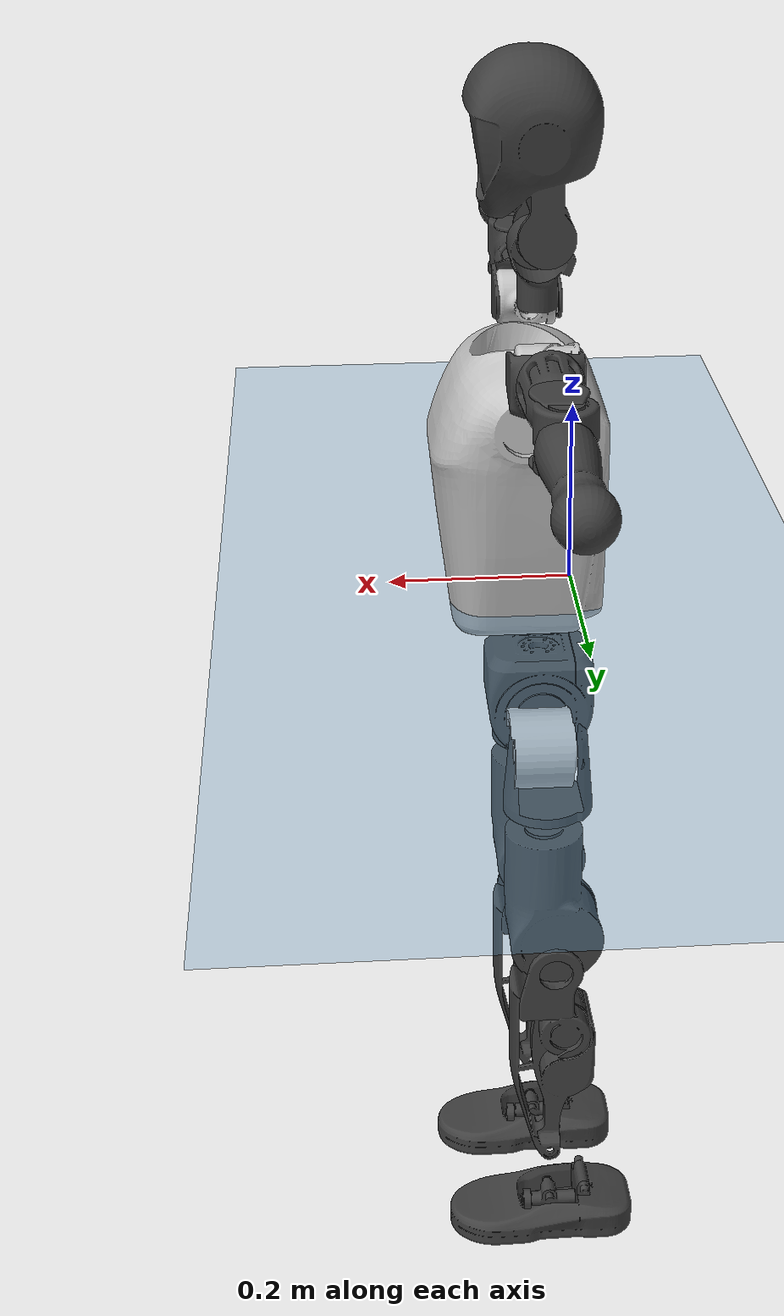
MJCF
<mujoco model="T1">
  <compiler angle="radian" assetdir="assets" balanceinertia="true" inertiafromgeom="false"/>

  <option timestep="0.005" density="1.2" viscosity="2e-05"/>

  <size nkey="1"/>

  <visual>
    <quality shadowsize="8192"/>
    <map shadowclip="0.5"/>
  </visual>

  <default>
    <default class="/">
      <joint armature="0.01" damping="0.01" frictionloss="0.1"/>
      <geom contype="0" conaffinity="0" group="1" solref="-1000 -80"/>
      <site size="0.01 0.005 0.005" group="5"/>
      <general forcelimited="true" biastype="affine" gainprm="25" biasprm="0 -25 -0.6"/>
      <default class="t1">
        <geom rgba="0.25 0.25 0.25 1"/>
        <default class="visual">
          <geom type="mesh" group="2"/>
        </default>
        <default class="collision">
          <geom group="3"/>
        </default>
        <default class="foot">
          <geom size="0.1115 0.05 0.015" type="box" condim="6" group="4" priority="1" solimp="0.015 1 0.015"/>
        </default>
        <default class="reward_collision_sphere">
          <geom group="5" rgba="1 0 0 1"/>
        </default>
      </default>
    </default>
  </default>

  <asset>
    <texture type="skybox" colorspace="auto" name="//unnamed_texture_0" builtin="gradient" rgb1="0.95 0.95 0.95" rgb2="0.95 0.95 0.95" width="100" height="600"/>
    <texture type="2d" colorspace="auto" name="texplane" builtin="checker" rgb1="0.345 0.575 0.748" rgb2="0.345 0.575 0.748" markrgb="1 1 1" width="512" height="512"/>
    <material name="MatPlane" class="/" texture="texplane" texuniform="true" texrepeat="2 2" specular="0.9"/>
    <mesh name="Trunk" class="/" file="Trunk.stl"/>
    <mesh name="H1" class="/" file="H1.stl"/>
    <mesh name="H2" class="/" file="H2.stl"/>
    <mesh name="AL1" class="/" file="AL1.stl"/>
    <mesh name="AL2" class="/" file="AL2.stl"/>
    <mesh name="AL3" class="/" file="AL3.stl"/>
    <mesh name="left_hand_link" class="/" file="left_hand_link.stl"/>
    <mesh name="AR1" class="/" file="AR1.stl"/>
    <mesh name="AR2" class="/" file="AR2.stl"/>
    <mesh name="AR3" class="/" file="AR3.stl"/>
    <mesh name="right_hand_link" class="/" file="right_hand_link.stl"/>
    <mesh name="Waist" class="/" file="Waist.stl"/>
    <mesh name="Hip_Pitch_Left" class="/" file="Hip_Pitch_Left.stl"/>
    <mesh name="Hip_Roll_Left" class="/" file="Hip_Roll_Left.stl"/>
    <mesh name="Hip_Yaw_Left" class="/" file="Hip_Yaw_Left.stl"/>
    <mesh name="Shank_Left" class="/" file="Shank_Left.stl"/>
    <mesh name="Ankle_Cross_Left" class="/" file="Ankle_Cross_Left.stl"/>
    <mesh name="left_foot_link" class="/" file="left_foot_link.stl"/>
    <mesh name="Hip_Pitch_Right" class="/" file="Hip_Pitch_Right.stl"/>
    <mesh name="Hip_Roll_Right" class="/" file="Hip_Roll_Right.stl"/>
    <mesh name="Hip_Yaw_Right" class="/" file="Hip_Yaw_Right.stl"/>
    <mesh name="Shank_Right" class="/" file="Shank_Right.stl"/>
    <mesh name="Ankle_Cross_Right" class="/" file="Ankle_Cross_Right.stl"/>
    <mesh name="right_foot_link" class="/" file="right_foot_link.stl"/>
  </asset>

  <worldbody>
    <geom name="floor" class="/" size="100 100 0.125" type="plane" group="0" material="MatPlane"/>
    <light name="toplight_shadow" class="/" pos="0 0 5" dir="0.0990148 0.0990148 -0.990148" type="directional" ambient="0.04 0.04 0.04" diffuse="0.55 0.55 0.55" specular="0.12 0.12 0.12"/>
    <light name="toplight_fill" class="/" pos="0 0 5" dir="0.0990148 0.0990148 -0.990148" type="directional" castshadow="false" ambient="0.04 0.04 0.04" diffuse="0.3 0.3 0.3" specular="0.08 0.08 0.08"/>
    <body name="trunk" childclass="t1" pos="0.001521 -0.00232406 -0.00159784" quat="1 0.000471609 -0.000370042 0.000149215">
      <inertial pos="0.033242 0.00145169 0.135562" quat="0.999944 0.000146868 -0.0100547 0.00315248" mass="8.10099" diaginertia="0.00641997 0.0235993 0.193888"/>
      <joint name="//unnamed_joint_0" type="free" armature="0" damping="0" frictionloss="0"/>
      <geom name="//unnamed_geom_1" class="visual" rgba="0.76 0.76 0.76 1" mesh="Trunk"/>
      <geom name="//unnamed_geom_2" class="collision" size="0.0666614 0.0888819 0.133323" pos="0.0355094 0 0.153505" type="box"/>
      <geom name="//unnamed_geom_3" class="reward_collision_sphere" size="0.102214" pos="0.0355094 0 0.127921"/>
      <geom name="//unnamed_geom_4" class="reward_collision_sphere" size="0.0133323" pos="0.0355094 0.0676108 0"/>
      <geom name="//unnamed_geom_5" class="reward_collision_sphere" size="0.0133323" pos="0.0355094 -0.0676108 0"/>
      <geom name="//unnamed_geom_6" class="reward_collision_sphere" size="0.0133323" pos="0.0355094 0.0851101 0.230258"/>
      <geom name="//unnamed_geom_7" class="reward_collision_sphere" size="0.0133323" pos="0.0355094 -0.0851101 0.230258"/>
      <site name="imu" pos="0.0271817 -0.0290982 0.0260854" size="0.00888819"/>
      <camera name="track" pos="0 -1.59084 0" quat="0.707107 0.707107 0 0" mode="trackcom"/>
      <camera name="ego_camera" pos="0.0722025 0 0.537269" quat="-0.5 -0.5 0.5 0.5"/>
      <body name="H1" pos="0.0370008 -0.00275566 0.309085" quat="0.999997 0.000385628 0.00249848 -0.000224261">
        <inertial pos="-0.000454861 0.00056884 0.0748843" quat="0.75844 -0.0196182 0.00717463 0.651408" mass="0.272369" diaginertia="1.723e-05 6.90721e-05 0.000492073"/>
        <joint name="AAHead_yaw" pos="0 0 0" axis="-0.000468135 -0.00330241 0.999994" range="-1.51839 1.55819" armature="0.00621117" damping="0.0225961" frictionloss="0.088867"/>
        <geom name="//unnamed_geom_8" class="visual" mesh="H1"/>
        <body name="H2" pos="-0.00711716 0.000758445 0.0790412" quat="1 -4.60772e-07 -2.04684e-05 -1.02216e-05">
          <inertial pos="0.00359728 0.00271442 0.124525" quat="0.987726 0.111616 -0.0675153 -0.085914" mass="0.4287" diaginertia="0.000148355 0.000598313 0.00583326"/>
          <joint name="Head_pitch" pos="0 0 0" axis="-0.0096118 -0.999954 -0.000393214" range="-1.26898 0.366056" armature="0.00959619" damping="0.00442774" frictionloss="0.0787007"/>
          <geom name="//unnamed_geom_9" class="visual" mesh="H2"/>
          <geom name="//unnamed_geom_10" class="collision" size="0.0711055" pos="0.00591823 0 0.140713"/>
          <geom name="//unnamed_geom_11" class="reward_collision_sphere" size="0.0799937" pos="0.0118365 0 0.127921"/>
        </body>
      </body>
      <body name="AL1" pos="0.0394549 0.0832711 0.282159" quat="0.999999 0.000362245 0.00158741 0.000470973">
        <inertial pos="-0.000293883 0.0322316 -0.000122333" quat="0.509772 0.490745 -0.497443 0.501849" mass="0.381917" diaginertia="9.8456e-05 0.000407088 0.000992928"/>
        <joint name="Left_Shoulder_Pitch" pos="0 0 0" axis="-0.0138514 0.999899 -0.00327106" range="-3.28937 1.18018" armature="0.00815933" damping="0.0133448" frictionloss="0.0940634"/>
        <geom name="//unnamed_geom_12" class="visual" rgba="0.76 0.76 0.76 1" mesh="AL1"/>
        <body name="AL2" pos="0.00287157 0.0378772 -0.000297814" quat="1 -2.32617e-05 0.000190549 -0.00035092">
          <inertial pos="0.00485298 0.0281292 -0.00424299" quat="0.48285 0.512203 -0.492913 0.51141" mass="0.104333" diaginertia="2.8709e-05 0.000113853 0.000591498"/>
          <joint name="Left_Shoulder_Roll" pos="0 0 0" axis="-0.999999 0.00118021 -0.000891782" range="-1.67665 1.63732" armature="0.0110509" damping="0.00922922" frictionloss="0.087587"/>
          <geom name="//unnamed_geom_13" class="visual" mesh="AL2"/>
          <body name="AL3" pos="-0.00136484 0.0456827 0.00413992" quat="0.999999 0.00103525 0.000425491 -0.000360482">
            <inertial pos="-0.00153843 0.0680092 -0.000720201" quat="0.706357 0.707855 -0.000320031 0.000555882" mass="0.682091" diaginertia="0.000939743 0.00393019 0.00224813"/>
            <joint name="Left_Elbow_Pitch" pos="0 0 0" axis="0.0252005 -0.999478 0.0202275" stiffness="0.0322813" range="-2.38003 2.20681" armature="0.0119268" damping="0.0454243" frictionloss="0.0980536"/>
            <geom name="//unnamed_geom_14" class="visual" mesh="AL3"/>
            <geom name="//unnamed_geom_15" class="collision" size="0.0266646 0.0666614" pos="0 0.0397711 0" quat="0.707105 0.707108 0 0" type="cylinder"/>
            <geom name="//unnamed_geom_16" class="reward_collision_sphere" size="0.0319975"/>
            <body name="left_hand_link" pos="0.00296067 0.114501 -0.00323382" quat="1 -0.00011786 -0.000132347 8.38298e-05">
              <inertial pos="-0.0015814 0.0896072 0.000401746" quat="0.708576 0.705634 0.000783789 -0.000306086" mass="0.233959" diaginertia="0.000555877 0.00244729 0.000762801"/>
              <joint name="Left_Elbow_Yaw" pos="0 0 0" axis="0.00513037 0.00527467 0.999973" range="-2.44732 0.0358513" armature="0.0063065" damping="0.0175492" frictionloss="0.091888"/>
              <geom name="//unnamed_geom_17" class="visual" mesh="left_hand_link"/>
              <geom name="//unnamed_geom_18" class="collision" size="0.0266646 0.0777717" pos="0 0.103405 0" quat="0.707105 0.707108 0 0" type="cylinder"/>
              <geom name="//unnamed_geom_19" class="reward_collision_sphere" size="0.044441"/>
              <geom name="//unnamed_geom_20" class="reward_collision_sphere" size="0.0311087" pos="0 0.0874964 0"/>
              <geom name="//unnamed_geom_21" class="reward_collision_sphere" size="0.0311087" pos="0 0.171016 0"/>
            </body>
          </body>
        </body>
      </body>
      <body name="AR1" pos="0.0374836 -0.0847077 0.280186" quat="0.999999 -0.000432746 0.000799839 0.00113719">
        <inertial pos="0.00454198 -0.0347176 -0.00212585" quat="0.520187 0.493894 -0.514917 0.469398" mass="0.377337" diaginertia="0.000100622 0.000417957 0.000947691"/>
        <joint name="Right_Shoulder_Pitch" pos="0 0 0" axis="-0.0081349 -0.999935 -0.00802096" range="-1.21715 3.29425" armature="0.00922207" damping="0" frictionloss="0.0976901"/>
        <geom name="//unnamed_geom_22" class="visual" rgba="0.76 0.76 0.76 1" mesh="AR1"/>
        <body name="AR2" pos="-0.00210217 -0.0386701 -0.000735706" quat="1 -0.000275377 -0.000522316 0.000446303">
          <inertial pos="0.00408156 -0.0279142 0.000340716" quat="0.512141 0.488125 -0.512028 0.487107" mass="0.109666" diaginertia="2.97876e-05 0.000103937 0.000600763"/>
          <joint name="Right_Shoulder_Roll" pos="0 0 0" axis="-0.999983 0.00462306 -0.00346521" range="-1.7423 1.45365" armature="0.00989408" damping="0.000140326" frictionloss="0.0993693"/>
          <geom name="//unnamed_geom_23" class="visual" mesh="AR2"/>
          <body name="AR3" pos="-0.0022856 -0.0510894 0.00315943" quat="1 5.39552e-05 0.00017409 0.000390709">
            <inertial pos="0.000718662 -0.0627295 -0.00307824" quat="0.708509 0.705611 0.00810192 -0.00786761" mass="0.730955" diaginertia="0.000930197 0.00416733 0.00203972"/>
            <joint name="Right_Elbow_Pitch" pos="0 0 0" axis="0.000566275 0.999997 0.00239609" stiffness="0.00299073" range="-2.28877 2.31575" armature="0.00870436" damping="0" frictionloss="0.0891339"/>
            <geom name="//unnamed_geom_24" class="visual" mesh="AR3"/>
            <geom name="//unnamed_geom_25" class="collision" size="0.0266646 0.0666614" pos="0 -0.0397711 0" quat="0.707105 0.707108 0 0" type="cylinder"/>
            <geom name="//unnamed_geom_26" class="reward_collision_sphere" size="0.0319975"/>
            <body name="right_hand_link" pos="-0.00269607 -0.116979 -0.00178232" quat="1 -0.000244746 0.000127194 2.49455e-05">
              <inertial pos="-0.000175468 -0.0897759 0.00379113" quat="0.699281 0.714841 -0.00286867 -0.000907121" mass="0.225139" diaginertia="0.000606119 0.00257165 0.000752155"/>
              <joint name="Right_Elbow_Yaw" pos="0 0 0" axis="-0.00891758 0.00915271 0.999918" range="0.0470947 2.44778" armature="0.0101971" damping="0" frictionloss="0.0815811"/>
              <geom name="//unnamed_geom_27" class="visual" mesh="right_hand_link"/>
              <geom name="//unnamed_geom_28" class="collision" size="0.0266646 0.0777717" pos="0 -0.103405 0" quat="0.707105 0.707108 0 0" type="cylinder"/>
              <geom name="//unnamed_geom_29" class="reward_collision_sphere" size="0.044441"/>
              <geom name="//unnamed_geom_30" class="reward_collision_sphere" size="0.0311087" pos="0 -0.0874964 0"/>
              <geom name="//unnamed_geom_31" class="reward_collision_sphere" size="0.0311087" pos="0 -0.171016 0"/>
            </body>
          </body>
        </body>
      </body>
      <body name="Waist" pos="0.0329398 0.00279684 -0.147415" quat="1 -5.19949e-05 3.3223e-05 1.08217e-06">
        <inertial pos="0.00868212 -0.00232897 0.00926404" quat="0.984515 0.00552833 -0.1749 0.010477" mass="1.73969" diaginertia="0.000412464 0.00161439 0.0159746"/>
        <joint name="Waist" pos="0 0 0" axis="-0.0237045 -0.0168152 0.999578" range="-1.53907 1.54295" armature="0.0087793" damping="0" frictionloss="0.0881107"/>
        <geom name="//unnamed_geom_32" class="visual" mesh="Waist"/>
        <body name="Hip_Pitch_Left" pos="0.0052295 0.0829213 -0.00194219" quat="0.999993 -0.00315911 -0.00147908 0.00101585">
          <inertial pos="0.00323615 -0.0113607 -0.0246918" quat="0.974655 0.223078 0.0150956 0.00742041" mass="0.772343" diaginertia="0.000141798 0.000485933 0.00428735"/>
          <joint name="Left_Hip_Pitch" pos="0 0 0" axis="-0.00245007 0.999968 -0.00767871" stiffness="0.00799799" range="-1.84643 1.59379" armature="0.0102473" damping="0" frictionloss="0.0624501"/>
          <geom name="//unnamed_geom_33" class="visual" rgba="0.76 0.76 0.76 1" mesh="Hip_Pitch_Left"/>
          <body name="Hip_Roll_Left" pos="-0.00649072 0.0011282 -0.0185823" quat="0.999993 -6.28866e-05 -0.000776899 0.0035993">
            <inertial pos="-0.000655103 -0.000629063 -0.063515" quat="0.705496 -0.00396559 0.00429726 0.70869" mass="0.281309" diaginertia="0.00012579 0.000506516 0.0017964"/>
            <joint name="Left_Hip_Roll" pos="0 0 0" axis="-0.999923 -0.00408456 0.0117297" stiffness="0.0071741" range="-1.56475 0.218646" armature="0.00812415" damping="0" frictionloss="0.0896124"/>
            <geom name="//unnamed_geom_34" class="visual" mesh="Hip_Roll_Left"/>
            <geom name="//unnamed_geom_35" class="reward_collision_sphere" size="0.0488851"/>
            <body name="Hip_Yaw_Left" pos="0.000979508 0.00139323 -0.105346" quat="1 6.98687e-05 -0.00069748 0.0004714">
              <inertial pos="-0.00370695 -0.00715055 -0.119231" quat="0.694821 -0.0289797 -0.0389439 0.717542" mass="1.43617" diaginertia="0.00176309 0.0076026 0.00859312"/>
              <joint name="Left_Hip_Yaw" pos="0 0 0" axis="-0.00265563 -0.00604308 -0.999978" range="-1.04327 0.984798" armature="0.00872637" damping="0" frictionloss="0.0821174"/>
              <geom name="//unnamed_geom_36" class="visual" mesh="Hip_Yaw_Left"/>
              <geom name="//unnamed_geom_37" class="collision" size="0.044441 0.0711055" type="cylinder"/>
              <body name="Shank_Left" pos="-0.0121158 0.00418031 -0.170644" quat="0.999999 0.000899034 0.00102577 0.000688664">
                <inertial pos="-0.00336735 0.00185653 -0.158222" quat="0.998568 -0.00934159 -0.0270369 0.0452089" mass="1.1468" diaginertia="0.00247299 0.0106435 0.00616789"/>
                <joint name="Left_Knee_Pitch" pos="0 0 0" axis="-0.0061567 0.999963 -0.0059421" range="-0.00942489 2.4171" armature="0.00763659" damping="0.00553318" frictionloss="0.0905381"/>
                <geom name="//unnamed_geom_38" class="visual" mesh="Shank_Left"/>
                <geom name="//unnamed_geom_39" class="collision" size="0.044441 0.0666614" pos="0 0 -0.153505" type="cylinder"/>
                <geom name="//unnamed_geom_40" class="reward_collision_sphere" size="0.0577732"/>
                <body name="Ankle_Cross_Left" pos="-0.00095687 0.00266406 -0.357064" quat="1 0.000274314 -0.000129704 0.000108893">
                  <inertial pos="-0.00414109 0.00190886 -0.0086775" quat="0.436951 0.545048 0.560495 0.444794" mass="0.0532143" diaginertia="2.08212e-06 8.40441e-06 3.99294e-05"/>
                  <joint name="Left_Ankle_Pitch" pos="0 0 0" axis="0.000193142 1 0.000838839" range="-0.755104 0.237877" armature="0.00835612" damping="0.0409949" frictionloss="0.0847708"/>
                  <geom name="//unnamed_geom_41" class="visual" mesh="Ankle_Cross_Left"/>
                  <body name="left_foot_link" pos="0.000368376 0.000109923 -0.0109764" quat="0.999996 0.00156047 0.00136462 0.00199606">
                    <inertial pos="-0.00231477 0.00268205 -0.00957573" quat="0.0140422 0.617369 0.000113478 0.786548" mass="0.433704" diaginertia="0.00017643 0.000697713 0.00621112"/>
                    <joint name="Left_Ankle_Roll" pos="0 0 0" axis="-0.999814 -0.0163566 0.0101989" range="-0.428533 0.319077" armature="0.0085296" damping="0.00605303" frictionloss="0.0555438"/>
                    <geom name="//unnamed_geom_42" class="visual" mesh="left_foot_link"/>
                    <geom name="left_foot" class="foot" size="0.104856 0.0548115 0.00957633" pos="0.00591823 0 -0.0191882"/>
                    <geom name="//unnamed_geom_44" class="reward_collision_sphere" size="0.0462186" pos="0.00591823 0 -0.0191882"/>
                    <geom name="//unnamed_geom_45" class="reward_collision_sphere" size="0.0266646" pos="0.0562232 -0.0182947 -0.0191882"/>
                    <geom name="//unnamed_geom_46" class="reward_collision_sphere" size="0.0266646" pos="-0.0414276 -0.0182947 -0.0191882"/>
                    <site name="left_foot" class="foot" pos="0.00591823 0 -0.0191882" size="0.00888819"/>
                  </body>
                </body>
              </body>
            </body>
          </body>
        </body>
        <body name="Hip_Pitch_Right" pos="0.000166468 -0.0846631 0.000833829" quat="1 -0.000771164 0.000603071 -0.00011528">
          <inertial pos="-0.000660929 0.00548753 -0.0231791" quat="0.974307 -0.223184 0.0154873 0.0259827" mass="0.766648" diaginertia="0.000141277 0.000503104 0.00455015"/>
          <joint name="Right_Hip_Pitch" pos="0 0 0" axis="-0.000482043 -0.999973 -0.00738082" stiffness="0.0055054" range="-1.54173 1.80842" armature="0.00908146" damping="0.00720841" frictionloss="0.0884221"/>
          <geom name="//unnamed_geom_47" class="visual" rgba="0.76 0.76 0.76 1" mesh="Hip_Pitch_Right"/>
          <body name="Hip_Roll_Right" pos="-0.00216828 0.000420725 -0.0203711" quat="1 0.000567127 -0.000473104 0.000618849">
            <inertial pos="-0.000481584 -0.00137274 -0.068667" quat="0.698196 -0.00520108 -0.00575481 0.715865" mass="0.288014" diaginertia="0.000132038 0.000505815 0.00190403"/>
            <joint name="Right_Hip_Roll" pos="0 0 0" axis="-0.999924 0.0122709 0.000963497" stiffness="0.0417638" range="-0.250623 1.58067" armature="0.00919125" damping="0.00538557" frictionloss="0.0873038"/>
            <geom name="//unnamed_geom_48" class="visual" mesh="Hip_Roll_Right"/>
            <geom name="//unnamed_geom_49" class="reward_collision_sphere" size="0.0488851"/>
            <body name="Hip_Yaw_Right" pos="0.00384971 -0.0069374 -0.105625" quat="1 -0.000211756 -0.000171516 0.000122123">
              <inertial pos="-0.00150724 4.6998e-05 -0.107885" quat="0.720746 -0.0181523 -0.0308264 0.692276" mass="1.4949" diaginertia="0.00195165 0.00853116 0.0093997"/>
              <joint name="Right_Hip_Yaw" pos="0 0 0" axis="-0.00654748 -0.0132074 -0.999891" range="-1.08672 1.01593" armature="0.00987609" damping="0" frictionloss="0.0909121"/>
              <geom name="//unnamed_geom_50" class="visual" mesh="Hip_Yaw_Right"/>
              <geom name="//unnamed_geom_51" class="collision" size="0.044441 0.0711055" type="cylinder"/>
              <body name="Shank_Right" pos="-0.00741428 -0.00284894 -0.173463" quat="1 0.000113975 -8.46575e-05 -0.000263661">
                <inertial pos="-0.0108343 0.00269574 -0.157483" quat="0.998759 0.0148027 -0.0294917 -0.0373104" mass="1.34437" diaginertia="0.00267278 0.0110296 0.00708551"/>
                <joint name="Right_Knee_Pitch" pos="0 0 0" axis="-0.0118448 -0.999889 0.00905089" range="-2.35856 0.0364539" armature="0.00841622" damping="0.0132182" frictionloss="0.0760037"/>
                <geom name="//unnamed_geom_52" class="visual" mesh="Shank_Right"/>
                <geom name="//unnamed_geom_53" class="collision" size="0.044441 0.0666614" pos="0 0 -0.153505" type="cylinder"/>
                <geom name="//unnamed_geom_54" class="reward_collision_sphere" size="0.0577732"/>
                <body name="Ankle_Cross_Right" pos="-0.000197232 0.00592734 -0.358601" quat="0.999996 -0.00143089 0.000650393 0.00218888">
                  <inertial pos="-0.00455907 -0.000304154 -0.012559" quat="0.445255 0.549441 0.552829 0.44073" mass="0.0518393" diaginertia="2.22106e-06 8.21895e-06 3.81238e-05"/>
                  <joint name="Right_Ankle_Pitch" pos="0 0 0" axis="-0.0056261 -0.999984 -0.00101661" range="-0.352942 0.748378" armature="0.00806863" damping="0" frictionloss="0.0882945"/>
                  <geom name="//unnamed_geom_55" class="visual" mesh="Ankle_Cross_Right"/>
                  <body name="right_foot_link" pos="0.00120421 0.000374133 -0.0139698" quat="0.999999 -0.00148634 -0.000190177 -0.000323118">
                    <inertial pos="0.00276916 -0.00192343 -0.0111804" quat="-0.00455464 0.623157 0.00606567 0.78206" mass="0.484324" diaginertia="0.000210139 0.000778246 0.00739335"/>
                    <joint name="Right_Ankle_Roll" pos="0 0 0" axis="-0.999932 0.00157367 0.0115477" range="-0.454025 0.438956" armature="0.00952809" damping="0.0175734" frictionloss="0.0984399"/>
                    <geom name="//unnamed_geom_56" class="visual" mesh="right_foot_link"/>
                    <geom name="right_foot" class="foot" size="0.0890744 0.0514625 0.0121763" pos="0.00591823 0 -0.0191882"/>
                    <geom name="//unnamed_geom_58" class="reward_collision_sphere" size="0.0355528"/>
                    <geom name="//unnamed_geom_59" class="reward_collision_sphere" size="0.0266646" pos="0.00591823 0 -0.0191882"/>
                    <geom name="//unnamed_geom_60" class="reward_collision_sphere" size="0.0266646" pos="0.0562232 0.0182947 -0.0191882"/>
                    <geom name="//unnamed_geom_61" class="reward_collision_sphere" size="0.0266646" pos="-0.0414276 0.0182947 -0.0191882"/>
                    <site name="right_foot" class="foot" pos="0.00591823 0 -0.0191882" size="0.00888819"/>
                  </body>
                </body>
              </body>
            </body>
          </body>
        </body>
      </body>
    </body>
  </worldbody>

  <contact>
    <pair class="/" geom1="floor" geom2="left_foot" name="//unnamed_contact_0"/>
    <pair class="/" geom1="floor" geom2="right_foot" name="//unnamed_contact_1"/>
  </contact>

  <actuator>
    <general name="AAHead_yaw" class="/" joint="AAHead_yaw" forcerange="-5.84867 5.84867" gainprm="25.314" biasprm="0 -25.314 -0.558774"/>
    <general name="Head_pitch" class="/" joint="Head_pitch" forcerange="-6.71691 6.71691" gainprm="25.314" biasprm="0 -25.314 -0.558774"/>
    <general name="Left_Shoulder_Pitch" class="/" joint="Left_Shoulder_Pitch" forcerange="-17.237 17.237" gainprm="25.314" biasprm="0 -25.314 -0.558774"/>
    <general name="Left_Shoulder_Roll" class="/" joint="Left_Shoulder_Roll" forcerange="-16.2127 16.2127" gainprm="25.314" biasprm="0 -25.314 -0.558774"/>
    <general name="Left_Elbow_Pitch" class="/" joint="Left_Elbow_Pitch" forcerange="-19.5983 19.5983" gainprm="25.314" biasprm="0 -25.314 -0.558774"/>
    <general name="Left_Elbow_Yaw" class="/" joint="Left_Elbow_Yaw" forcerange="-13.3675 13.3675" gainprm="25.314" biasprm="0 -25.314 -0.558774"/>
    <general name="Right_Shoulder_Pitch" class="/" joint="Right_Shoulder_Pitch" forcerange="-13.0796 13.0796" gainprm="25.314" biasprm="0 -25.314 -0.558774"/>
    <general name="Right_Shoulder_Roll" class="/" joint="Right_Shoulder_Roll" forcerange="-15.46 15.46" gainprm="25.314" biasprm="0 -25.314 -0.558774"/>
    <general name="Right_Elbow_Pitch" class="/" joint="Right_Elbow_Pitch" forcerange="-16.2121 16.2121" gainprm="25.314" biasprm="0 -25.314 -0.558774"/>
    <general name="Right_Elbow_Yaw" class="/" joint="Right_Elbow_Yaw" forcerange="-15.6879 15.6879" gainprm="25.314" biasprm="0 -25.314 -0.558774"/>
    <general name="Waist" class="/" joint="Waist" forcerange="-25.4141 25.4141" gainprm="25.314" biasprm="0 -25.314 -0.558774"/>
    <general name="Left_Hip_Pitch" class="/" joint="Left_Hip_Pitch" forcerange="-38.6372 38.6372" gainprm="25.314" biasprm="0 -25.314 -0.558774"/>
    <general name="Left_Hip_Roll" class="/" joint="Left_Hip_Roll" forcerange="-21.7426 21.7426" gainprm="25.314" biasprm="0 -25.314 -0.558774"/>
    <general name="Left_Hip_Yaw" class="/" joint="Left_Hip_Yaw" forcerange="-32.7621 32.7621" gainprm="25.314" biasprm="0 -25.314 -0.558774"/>
    <general name="Left_Knee_Pitch" class="/" joint="Left_Knee_Pitch" forcerange="-65.2535 65.2535" gainprm="25.314" biasprm="0 -25.314 -0.558774"/>
    <general name="Left_Ankle_Pitch" class="/" joint="Left_Ankle_Pitch" forcerange="-17.8202 17.8202" gainprm="25.314" biasprm="0 -25.314 -0.558774"/>
    <general name="Left_Ankle_Roll" class="/" joint="Left_Ankle_Roll" forcerange="-13.4635 13.4635" gainprm="25.314" biasprm="0 -25.314 -0.558774"/>
    <general name="Right_Hip_Pitch" class="/" joint="Right_Hip_Pitch" forcerange="-42.4811 42.4811" gainprm="25.314" biasprm="0 -25.314 -0.558774"/>
    <general name="Right_Hip_Roll" class="/" joint="Right_Hip_Roll" forcerange="-26.6708 26.6708" gainprm="25.314" biasprm="0 -25.314 -0.558774"/>
    <general name="Right_Hip_Yaw" class="/" joint="Right_Hip_Yaw" forcerange="-26.5101 26.5101" gainprm="25.314" biasprm="0 -25.314 -0.558774"/>
    <general name="Right_Knee_Pitch" class="/" joint="Right_Knee_Pitch" forcerange="-54.8094 54.8094" gainprm="25.314" biasprm="0 -25.314 -0.558774"/>
    <general name="Right_Ankle_Pitch" class="/" joint="Right_Ankle_Pitch" forcerange="-20.4139 20.4139" gainprm="25.314" biasprm="0 -25.314 -0.558774"/>
    <general name="Right_Ankle_Roll" class="/" joint="Right_Ankle_Roll" forcerange="-13.4638 13.4638" gainprm="25.314" biasprm="0 -25.314 -0.558774"/>
  </actuator>

  <sensor>
    <gyro site="imu" name="imu_angular_velocity"/>
    <velocimeter site="imu" name="imu_linear_velocity"/>
    <framelinvel objtype="site" objname="left_foot" name="left_foot_global_linear_velocity"/>
    <framelinvel objtype="site" objname="right_foot" name="right_foot_global_linear_velocity"/>
  </sensor>

  <keyframe>
    <key name="home" qpos="0 0 0.6385 1 0 0 0 0 0 0 1.4 0 -0.4 0 -1.4 0 0.4 0 -0.4 0 0 0.8 -0.4 0 0.4 0 0 -0.8 0.4 0"/>
  </keyframe>
</mujoco>
